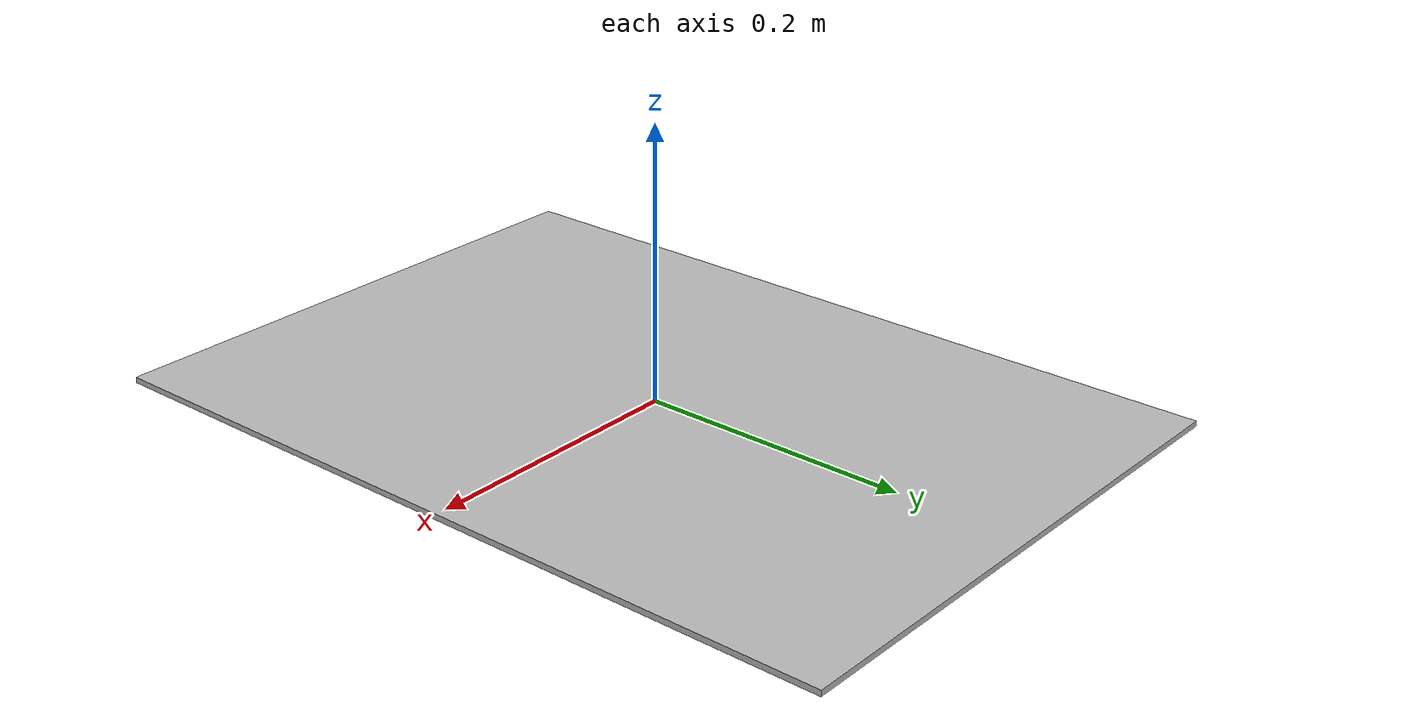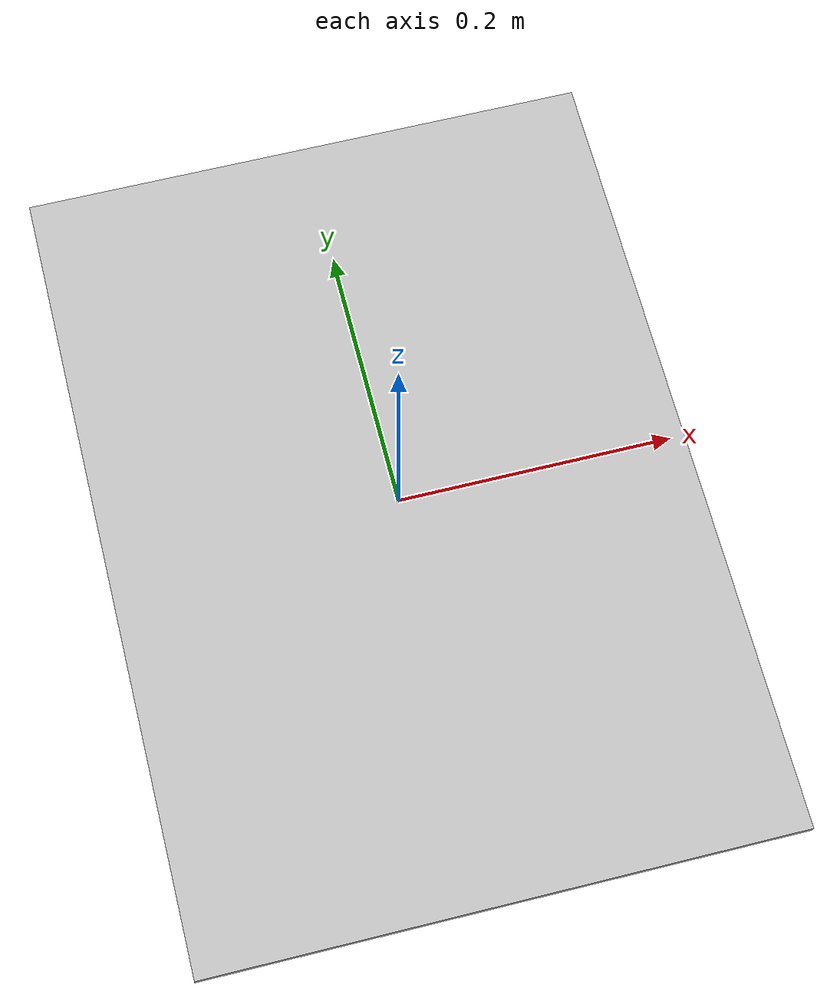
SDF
<?xml version="1.0"?>
<sdf version="1.5">
  <model name="ARtagNot">
    <pose>0 0 0 0 0 0</pose>
    <static>false</static>
    <link name="link">
      <inertial>
        <mass>1.0</mass>
        <inertia>
          <ixx>0</ixx>
          <ixy>0</ixy>
          <ixz>0</ixz>
          <iyy>0</iyy>
          <iyz>0</iyz>
          <izz>0</izz>
        </inertia>
      </inertial>
      <collision name="collision">
        <geometry>
          <box>
            <size>0.42 0.594 0.01</size>
          </box>
        </geometry>
        <surface>
          <contact>
            <ode>
              <max_vel>0.1</max_vel>
              <min_depth>0.001</min_depth>
            </ode>
          </contact>
        </surface>
      </collision>
      <visual name="visual">
        <geometry>
          <mesh>
            <uri>model://ARtagNot/meshes/ARtagV2A2.dae</uri>
          </mesh>
        </geometry>
      </visual>
    </link>
  </model>
</sdf>
